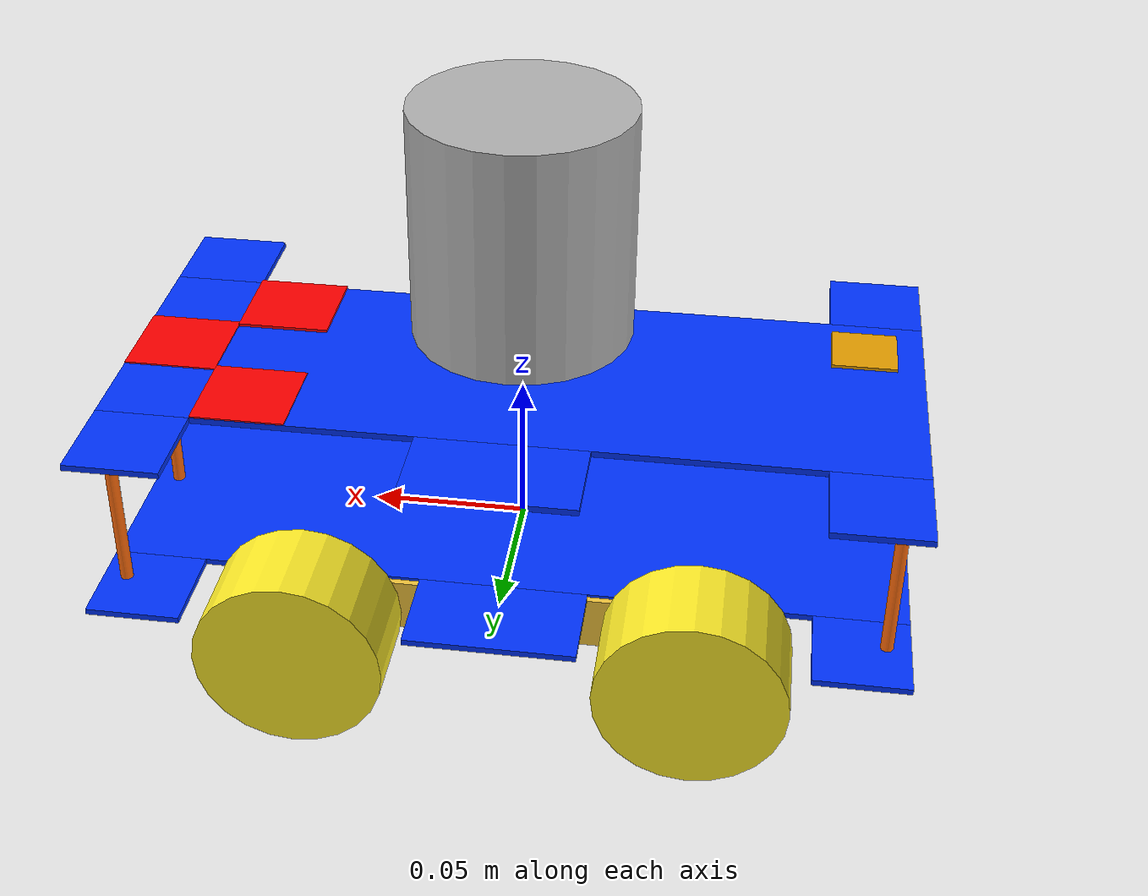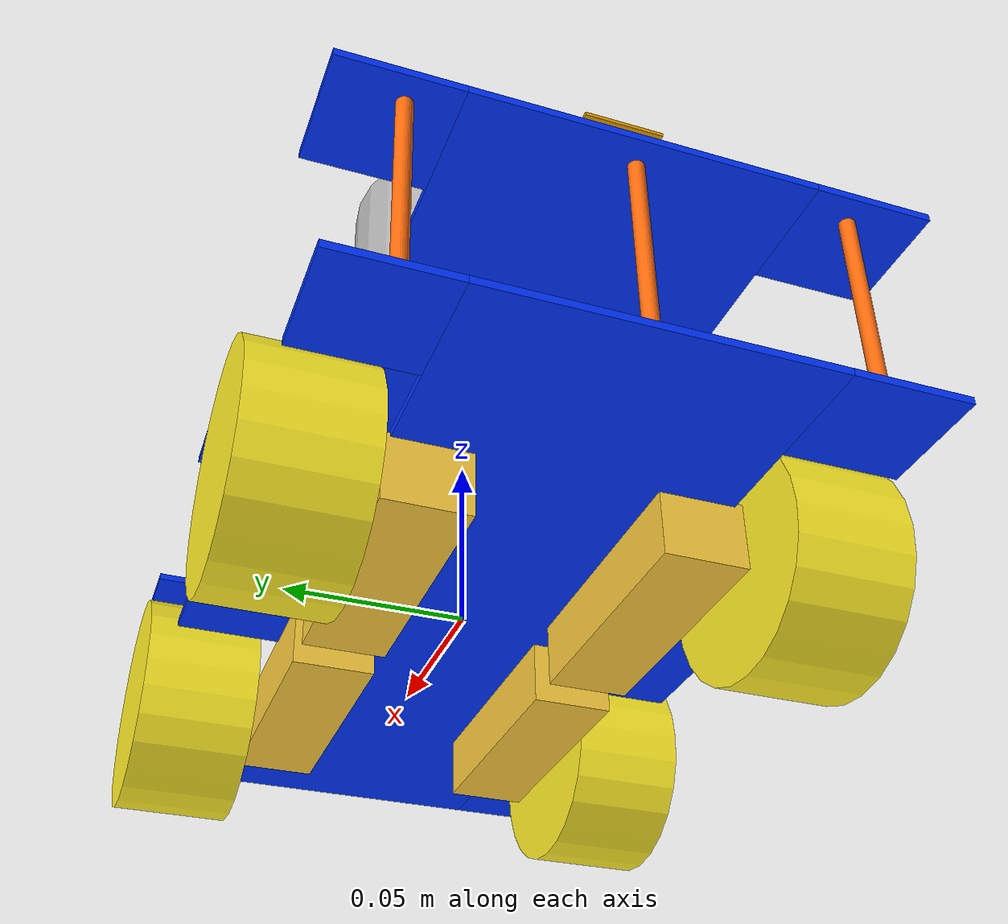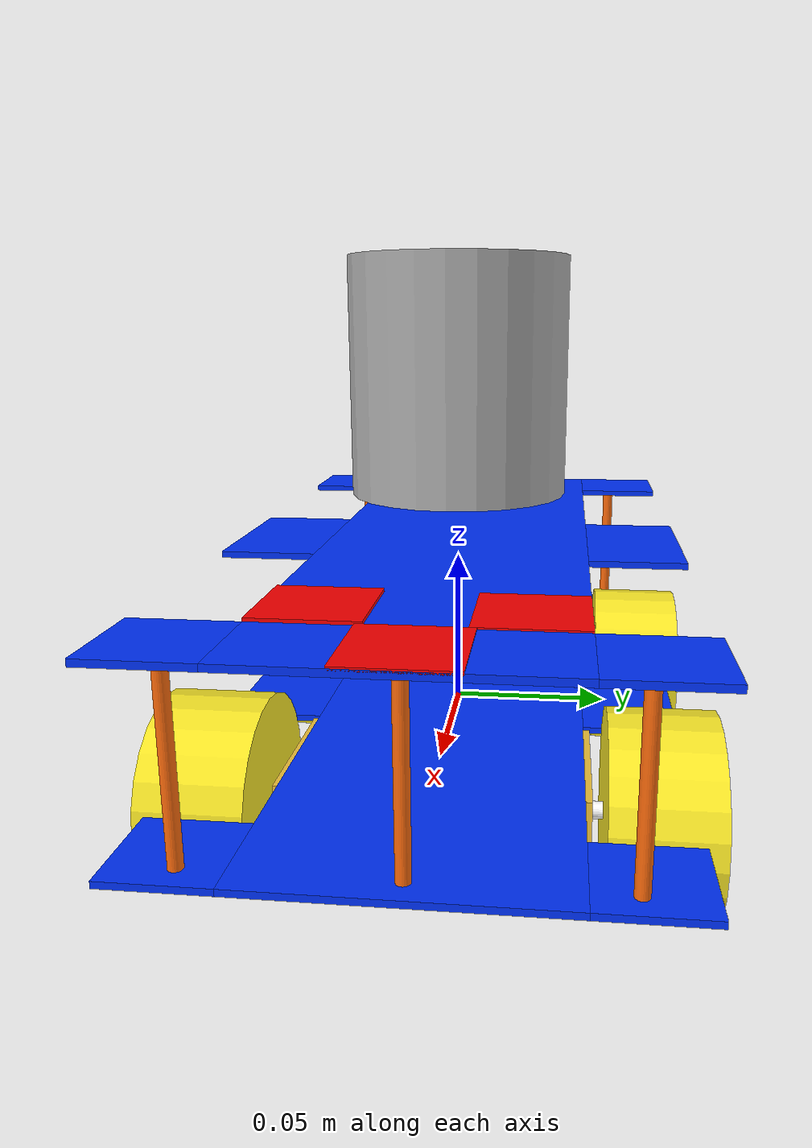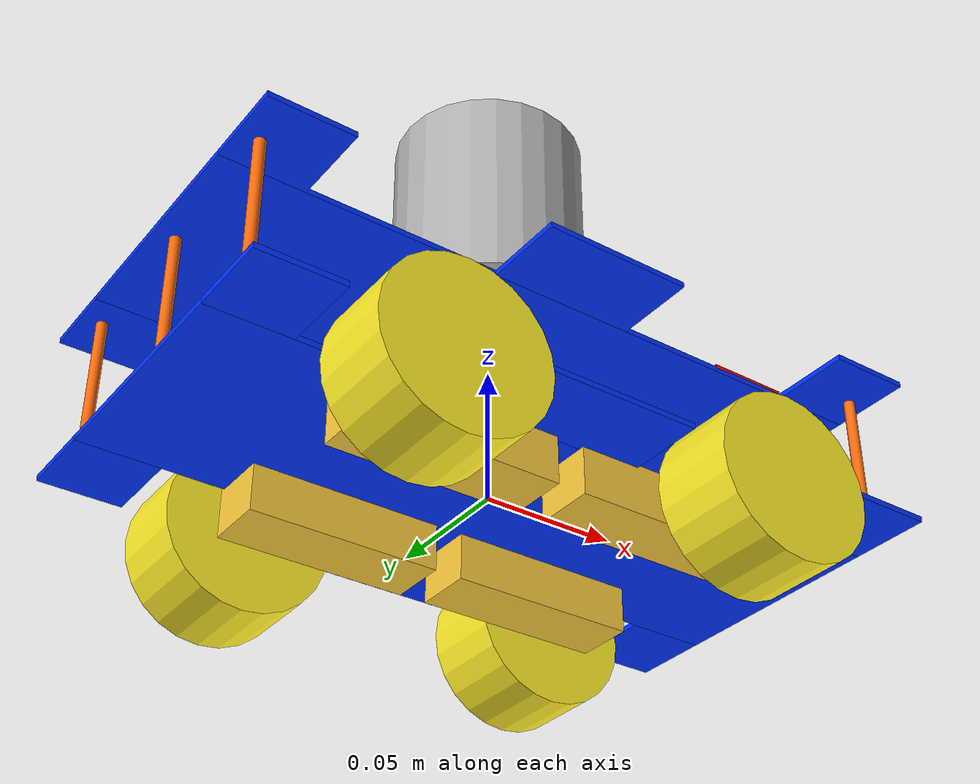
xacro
<?xml version="1.0"?>

<robot xmlns:xacro="http://www.ros.org/wiki/xacro">

    <xacro:arg name="use_simulation" default="false"/>

    <xacro:include filename="$(find mecabot_description)/urdf/include/common_macros.xacro"/>
    <xacro:include filename="$(find mecabot_description)/urdf/include/materials.xacro"/>

    <xacro:include filename="$(find mecabot_description)/urdf/chassis/layer.xacro"/>
    <xacro:include filename="$(find mecabot_description)/urdf/wheels/wheel.xacro"/>
    <xacro:include filename="$(find mecabot_description)/urdf/wheels/mecanum_wheel.xacro"/>

    <xacro:include filename="$(find mecabot_description)/urdf/sensors/imu.xacro"/>
    <xacro:include filename="$(find mecabot_description)/urdf/sensors/lidar.xacro"/>

    <!--~~~~~~~~~~ BASE LINK ~~~~~~~~~~-->
    <link name="base_link">
    </link>

    <!--~~~~~~~~~~ CHASSIS LAYERS ~~~~~~~~~~-->
    <xacro:layer name="lower_layer" parent="base" mass="${layer_mass}"
                length="${layer_l}" width="${layer_w-wheel_thickness*2}" height="${layer_h}" reflect="0"/>

    <xacro:layer name="upper_layer" parent="base" mass="${layer_mass}"
                length="${layer_l}" width="${layer_w-wheel_thickness*2}" height="${layer_h}" reflect="1"/>

    <!--~~~~~~~~~~ MECANUM WHEEL LINKS ~~~~~~~~~~-->
    <xacro:wheel name="front_left" parent="base" mass="${wheel_mass}"
                radius="${wheel_radius}" thickness="${wheel_thickness}" side_FB="1" side_LR="1"/>
    <xacro:wheel name="front_right" parent="base" mass="${wheel_mass}"
                radius="${wheel_radius}" thickness="${wheel_thickness}" side_FB="1" side_LR="-1"/>
    <xacro:wheel name="back_left" parent="base" mass="${wheel_mass}"
                radius="${wheel_radius}" thickness="${wheel_thickness}" side_FB="-1" side_LR="1"/>
    <xacro:wheel name="back_right" parent="base" mass="${wheel_mass}"
                radius="${wheel_radius}" thickness="${wheel_thickness}" side_FB="-1" side_LR="-1"/>

    <!--~~~~~~~~~~ LIDAR ~~~~~~~~~~-->
    <xacro:lidar parent="base"/>
    <!--~~~~~~~~~~ IMU ~~~~~~~~~~-->
    <xacro:imu parent="base"/>

    <!--~~~~~~~~~~ Extra simulation components (if use Gazebo). Change condition to False when run on real robot  ~~~~~~~~~~-->
    <xacro:if value="$(arg use_simulation)">
        <!-- Publish joints' state -->
        <gazebo>
            <plugin name="joint_state_publisher" filename="libgazebo_ros_joint_state_publisher.so">
                <jointName>front_left_wheel_joint, front_right_wheel_joint, back_left_wheel_joint, back_right_wheel_joint</jointName>
            </plugin>
        </gazebo>

        <!-- Lidar simulation using Gazebo. -->
        <gazebo reference="lidar_frame">
            <material>Gazebo/Black</material>
            <sensor name="laser" type="ray">
                <pose> 0 0 0 0 0 0 </pose>
                <visualize>true</visualize>
                <update_rate>30</update_rate>
                <ray>
                    <scan>
                        <horizontal>
                            <samples>359</samples>
                            <resolution>1</resolution>
                            <min_angle>-3.14</min_angle>
                            <max_angle>3.14</max_angle>
                        </horizontal>
                    </scan>
                    <range>
                        <min>0.2</min>
                        <max>12</max>
                        <resolution>0.01</resolution>
                    </range>
                    <noise>
                        <type>gaussian</type>
                        <mean>0.0</mean>
                        <stddev>0.02</stddev>
                    </noise>
                </ray>
                <plugin name="laser_controller" filename="libgazebo_ros_laser.so">
                    <robotNamespace>/</robotNamespace>
                    <topicName>/scan</topicName>
                    <frameName>lidar_frame</frameName>
                </plugin>
            </sensor>
        </gazebo>

        <!-- IMU simulation using Gazebo. -->
        <gazebo reference="imu_frame">
            <gravity>true</gravity>
            <sensor name="imu_sensor" type="imu">
                <always_on>true</always_on>
                <update_rate>100</update_rate>
                <visualize>true</visualize>
                <topic>__default_topic__</topic>
                <plugin name="imu_plugin" filename="libgazebo_ros_imu_sensor.so">
                    <robotNamespace>/</robotNamespace>
                    <topicName>/imu</topicName>
                    <bodyName>imu_frame</bodyName>
                    <updateRateHZ>10.0</updateRateHZ>
                    <gaussianNoise>0.0</gaussianNoise>
                    <xyzOffset>0 0 0</xyzOffset>
                    <rpyOffset>0 0 0</rpyOffset>
                    <frameName>imu_frame</frameName>
                    <initialOrientationAsReference>false</initialOrientationAsReference>
                </plugin>
                <pose>0 0 0 0 0 0</pose>
            </sensor>
        </gazebo>
    </xacro:if>

</robot>

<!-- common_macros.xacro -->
<robot xmlns:xacro="http://www.ros.org/wiki/xacro">

    <xacro:property name="PI" value="3.1415926535897931" />

    <!--~~~~~~~~~~ Basic shapes' inertia ~~~~~~~~~~-->
    <xacro:macro name="inertial_cylinder" params="mass radius length *origin">
        <inertial>
            <xacro:insert_block name="origin"/>
            <mass value="${mass}" />
            <inertia ixx="${(1/12) * mass * (3*radius*radius + length*length)}" ixy="0.0" ixz="0.0"
                    iyy="${(1/12) * mass * (3*radius*radius + length*length)}" iyz="0.0"
                    izz="${(1/2) * mass * (radius*radius)}" />
        </inertial>
    </xacro:macro>

    <xacro:macro name="inertial_box" params="mass x y z *origin">
        <inertial>
            <xacro:insert_block name="origin"/>
            <mass value="${mass}" />
            <inertia ixx="${(1/12) * mass * (y*y+z*z)}" ixy="0.0" ixz="0.0"
                    iyy="${(1/12) * mass * (x*x+z*z)}" iyz="0.0"
                    izz="${(1/12) * mass * (x*x+y*y)}" />
        </inertial>
    </xacro:macro>

    <!--~~~~~~~~~~ Layer and chassis properties ~~~~~~~~~~-->
    <xacro:property name="layer_l" value="0.255"/>
    <xacro:property name="layer_w" value="0.148"/>
    <xacro:property name="layer_h" value="0.002"/>
    <xacro:property name="layer_mass" value="1.0"/>

    <xacro:property name="side_piece_size" value="0.03"/>

    <xacro:property name="motor_l" value="0.07"/>
    <xacro:property name="motor_w" value="0.022"/>
    <xacro:property name="motor_h" value="0.018"/>

    <xacro:property name="motor_offset_fb" value="0.04"/>
    <xacro:property name="motor_offset_lr" value="0.034"/>

    <xacro:property name="shaft_radius" value="0.0025"/>
    <xacro:property name="shaft_length" value="0.03"/>
    <xacro:property name="shaft_offset_fb" value="0.06215"/>

    <xacro:property name="chassis_l" value="${layer_l}"/>
    <xacro:property name="chassis_w" value="${layer_w}"/>
    <xacro:property name="chassis_h" value="0.07"/>

    <!--~~~~~~~~~~ Wheel properties ~~~~~~~~~~-->
    <xacro:property name="wheel_radius" value="0.03" />
    <xacro:property name="wheel_thickness" value="0.031" />
    <xacro:property name="wheel_mass" value="0.5" /> <!-- in kg-->

    <xacro:property name="wheel_offset_z" value="0.009" />
    <xacro:property name="wheel_offset_fb" value="0.06215"/>
    <xacro:property name="wheel_offset_lr" value="0.064"/>

    <!--~~~~~~~~~~ Copper pillar properties ~~~~~~~~~~-->
    <xacro:property name="pillar_radius" value="0.002"/>
    <xacro:property name="pillar_length" value="0.055"/>
    <xacro:property name="pillar_offset_fb" value="0.12"/>
    <xacro:property name="pillar_offset_lr" value="0.055"/>

    <!--~~~~~~~~~~ LiDAR properties ~~~~~~~~~~-->
    <xacro:property name="lidar_radius" value="0.035"/>
    <xacro:property name="lidar_height" value="0.075"/>
    <xacro:property name="lidar_mass" value="0.29"/>

</robot>

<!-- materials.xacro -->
<robot xmlns:xacro="http://www.ros.org/wiki/xacro">

  <material name="black">
    <color rgba="0.0 0.0 0.0 1.0"/>
  </material>

  <material name="red">
    <color rgba="0.8 0.0 0.0 1.0"/>
  </material>

  <material name="green">
    <color rgba="0.0 0.8 0.0 1.0"/>
  </material>

 <material name="blue">
    <color rgba="0.0 0.0 0.8 1.0"/>
  </material>

  <material name="yellow">
    <color rgba="${247/255} ${237/255} ${49/255} 1.0"/>
  </material>

  <material name="orange">
    <color rgba="${255/255} ${108/255} ${10/255} 1.0"/>
  </material>

  <material name="brown">
    <color rgba="${222/255} ${207/255} ${195/255} 1.0"/>
  </material>

  <material name="grey">
    <color rgba="0.2 0.2 0.2 1.0"/>
  </material>

  <material name="white">
    <color rgba="1.0 1.0 1.0 1.0"/>
  </material>

  <xacro:property name="base_material">
    <material name="blue">
        <color rgba="0.0 0.2 1.0 1.0"/>
    </material>
  </xacro:property>

  <xacro:property name="motor_material">
    <material name="motor_yellow">
        <color rgba="${247/255} ${200/255} ${60/255} 1.0"/>
    </material>
  </xacro:property>

</robot>

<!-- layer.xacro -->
<robot xmlns:xacro="http://www.ros.org/wiki/xacro">

    <xacro:macro name="motor_visual" params="name side_FB side_LR">
        <visual name="${name}">
            <origin xyz="${motor_offset_fb*side_FB} ${motor_offset_lr*side_LR} -${motor_h/2}" rpy="0.0 0.0 0.0"/>
            <geometry>
                <box size="${motor_l} ${motor_w} ${motor_h}"/>
            </geometry>
            <xacro:insert_block name="motor_material"/>
        </visual>
        <visual name="${name}_shaft">
            <origin xyz="${shaft_offset_fb*side_FB} ${(motor_offset_lr + shaft_length/3)*side_LR} -${motor_h/2}" rpy="-${PI/2} 0.0 0.0"/>
            <geometry>
                <cylinder radius="${shaft_radius}" length="${shaft_length}"/>
            </geometry>
            <material name="white">
                <color rgba="1.0 1.0 1.0 1.0"/>
            </material>
        </visual>
    </xacro:macro>

    <xacro:macro name="direction_pieces_visual">

        <visual name="direction_piece_1">
            <origin xyz="${length/2-side_piece_size/2} 0.0 ${height/2}" rpy="0.0 0.0 0.0"/>
            <geometry>
                <box size="${side_piece_size} ${side_piece_size} ${height/2}"/>
            </geometry>
            <material name="header">
                <color rgba="1.0 0.0 0.0 1.0"/>
            </material>
        </visual>

        <visual name="direction_piece_2">
            <origin xyz="${length/2-1.5*side_piece_size} ${width/2-side_piece_size/2} ${height/2}" rpy="0.0 0.0 0.0"/>
            <geometry>
                <box size="${side_piece_size} ${side_piece_size} ${height/2}"/>
            </geometry>
            <material name="header">
                <color rgba="1.0 0.0 0.0 1.0"/>
            </material>
        </visual>

        <visual name="direction_piece_3">
            <origin xyz="${length/2-1.5*side_piece_size} -${width/2-side_piece_size/2} ${height/2}" rpy="0.0 0.0 0.0"/>
            <geometry>
                <box size="${side_piece_size} ${side_piece_size} ${height}"/>
            </geometry>
            <material name="header">
                <color rgba="1.0 0.0 0.0 1.0"/>
            </material>
        </visual>

    </xacro:macro>

    <xacro:macro name="pillar_visual" params="side_FB side_LR">
        <visual>
            <origin xyz="${pillar_offset_fb*side_FB} ${pillar_offset_lr*side_LR} ${-pillar_length/2}" rpy="0.0 0.0 0.0"/>
            <geometry>
                <cylinder radius="${pillar_radius}" length="${pillar_length}"/>
            </geometry>
            <material name="pillar_color">
                <color rgba="${255/255} ${108/255} ${12/255} 1.0"/>
            </material>
        </visual>
    </xacro:macro>

    <xacro:macro name="layer" params="name parent mass length width height reflect">

        <xacro:property name="layer_joint_origin">
            <origin xyz="0 0 ${reflect*0.055}" rpy="0 0 0"/>
        </xacro:property>

        <link name="${name}_link">

            <visual>
                <origin xyz="0 0 0" rpy="0 0 0"/>
                <geometry>
                    <box size="${length} ${width} ${height}"/>
                </geometry>
                <xacro:insert_block name="base_material"/>
            </visual>

            <xacro:if value="${name == 'upper_layer'}">
                <xacro:direction_pieces_visual/>
                <xacro:pillar_visual side_FB="1" side_LR="0"/>
                <xacro:pillar_visual side_FB="1" side_LR="1"/>
                <xacro:pillar_visual side_FB="1" side_LR="-1"/>
                <xacro:pillar_visual side_FB="-1" side_LR="0"/>
                <xacro:pillar_visual side_FB="-1" side_LR="1"/>
                <xacro:pillar_visual side_FB="-1" side_LR="-1"/>
            </xacro:if>

            <xacro:if value="${name == 'lower_layer'}">
                <xacro:motor_visual name="FL_motor" side_FB="1" side_LR="1"/>
                <xacro:motor_visual name="FR_motor" side_FB="1" side_LR="-1"/>
                <xacro:motor_visual name="BL_motor" side_FB="-1" side_LR="1"/>
                <xacro:motor_visual name="BR_motor" side_FB="-1" side_LR="-1"/>
            </xacro:if>

            <!-- Front left piece -->
            <visual>
                <origin xyz="${length/2-side_piece_size/2} ${width/2+side_piece_size/2} 0" rpy="0.0 0.0 0.0"/>
                <geometry>
                    <box size="${side_piece_size} ${side_piece_size} ${height}"/>
                </geometry>
                <xacro:insert_block name="base_material"/>
            </visual>
            <!-- Front right piece -->
            <visual>
                <origin xyz="${length/2-side_piece_size/2} -${width/2+side_piece_size/2} 0" rpy="0.0 0.0 0.0"/>
                <geometry>
                    <box size="${side_piece_size} ${side_piece_size} ${height}"/>
                </geometry>
                <xacro:insert_block name="base_material"/>
            </visual>
            <!-- Middle left piece -->
            <visual>
                <origin xyz="0.0 ${width/2+side_piece_size/2} 0" rpy="0.0 0.0 0.0"/>
                <geometry>
                    <box size="${side_piece_size*1.8} ${side_piece_size} ${height}"/>
                </geometry>
                <xacro:insert_block name="base_material"/>
            </visual>
            <!-- Middle right piece -->
            <visual>
                <origin xyz="0.0 -${width/2+side_piece_size/2} 0" rpy="0.0 0.0 0.0"/>
                <geometry>
                    <box size="${side_piece_size*1.8} ${side_piece_size} ${height}"/>
                </geometry>
                <xacro:insert_block name="base_material"/>
            </visual>
            <!-- Back left piece -->
            <visual>
                <origin xyz="-${length/2-side_piece_size/2} ${width/2+side_piece_size/2} 0" rpy="0.0 0.0 0.0"/>
                <geometry>
                    <box size="${side_piece_size} ${side_piece_size} ${height}"/>
                </geometry>
                <xacro:insert_block name="base_material"/>
            </visual>
            <!-- Back right piece -->
            <visual>
                <origin xyz="-${length/2-side_piece_size/2} -${width/2+side_piece_size/2} 0" rpy="0.0 0.0 0.0"/>
                <geometry>
                    <box size="${side_piece_size} ${side_piece_size} ${height}"/>
                </geometry>
                <xacro:insert_block name="base_material"/>
            </visual>

            <collision>
                <origin xyz="0 0 0" rpy="0 0 0"/>
                <geometry>
                    <box size="${length} ${width + 2*side_piece_size} ${height}"/>
                </geometry>
            </collision>

            <xacro:inertial_box mass="${mass}" x="${length}" y="${width}" z="${height}">
                <origin xyz="0.0 0.0 0.0" rpy="0.0 0.0 0.0"/>
            </xacro:inertial_box>

        </link>

        <joint name="${parent}_to_${name}_joint" type="fixed">

            <parent link="${parent}_link"/>

            <child link="${name}_link"/>

            <xacro:insert_block name="layer_joint_origin"/>

        </joint>

        <gazebo reference="${name}_link">
            <material>Gazebo/Blue</material>
        </gazebo>

    </xacro:macro>

</robot>

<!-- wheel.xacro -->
<robot xmlns:xacro="http://www.ros.org/wiki/xacro">

    <xacro:macro name="wheel" params="name parent mass radius thickness side_FB side_LR">

        <link name="${name}_wheel_link">

            <visual>
                <origin xyz="0.0 0.0 0.0" rpy="0.0 0.0 0.0"/>
                <geometry>
                    <cylinder radius="${radius}" length="${thickness}"/>
                </geometry>
                <material name="yellow">
                    <color rgba="${255/255} ${237/255} ${40/255} 1.0"/>
                </material>
            </visual>

            <collision>
                <origin xyz="0 0 0" rpy="0 0 0" />
                <geometry>
                    <cylinder radius="${radius}" length="${thickness}"/>
                </geometry>
            </collision>

            <xacro:inertial_cylinder  mass="${mass}" radius="${radius}" length="${thickness}">
                <origin xyz="0 0 0" rpy="0 0 0"/>
            </xacro:inertial_cylinder>

        </link>

        <gazebo reference="${name}_wheel_link">
			<mu1 value="0.5"/>
			<mu2 value="0.5"/>
			<kp value="10000000.0" />
			<kd value="1.0" />
			<fdir1 value="1 0 0"/>
		</gazebo>

        <joint name="${name}_wheel_joint" type="continuous">

            <parent link="${parent}_link"/>

            <child link="${name}_wheel_link"/>

            <origin xyz="${wheel_offset_fb*side_FB} ${wheel_offset_lr*side_LR} -${wheel_offset_z}" rpy="${-side_LR*PI/2} 0.0 0.0"/>

            <axis xyz="0 0 ${side_LR}" rpy="0 0 0" />

        </joint>

        <gazebo reference="${name}_wheel_link">
            <material>Gazebo/Yellow</material>
        </gazebo>

    </xacro:macro>

</robot>

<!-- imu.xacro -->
<robot xmlns:xacro="http://www.ros.org/wiki/xacro">

    <xacro:macro name="imu" params="parent">

        <joint name="imu_joint" type="fixed">
            <origin xyz="-0.1065 0.0 0.072" rpy="0.0 0.0 0.0"/>
            <parent link="${parent}_link"/>
            <child link="imu_frame"/>
        </joint>

        <link name="imu_frame">

            <visual>
                <origin xyz="0.0 0.0 0.0" rpy="0.0 0.0 0.0"/>
                <geometry>
                    <box size="0.02 0.02 ${layer_h/2}"/>
                </geometry>
            </visual>

            <collision>
                <origin xyz="0.0 0.0 0.0" rpy="0.0 0.0 0.0"/>
                <geometry>
                    <box size="0.02 0.02 ${layer_h/2}"/>
                </geometry>
            </collision>

        </link>

    </xacro:macro>

</robot>

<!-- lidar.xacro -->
<robot xmlns:xacro="http://www.ros.org/wiki/xacro">

    <xacro:macro name="lidar" params="parent">

        <xacro:property name="lidar_joint_origin">
            <origin xyz="0 0 ${lidar_height/2 + 0.072}" rpy="0.0 0.0 0.0"/>
        </xacro:property>

        <joint name="lidar_joint" type="fixed">
            <xacro:insert_block name="lidar_joint_origin"/>
            <parent link="${parent}_link"/>
            <child link="lidar_frame"/>
        </joint>

        <link name="lidar_frame">
            <visual>
                <origin xyz="0 0 0" rpy="0 0 0" />
                <geometry>
                    <cylinder radius="${lidar_radius}" length="${lidar_height}"/>
                </geometry>
            </visual>
            <collision>
                <origin xyz="0 0 0" rpy="0 0 0" />
                <geometry>
                    <cylinder radius="${lidar_radius}" length="${lidar_height}"/>
                </geometry>
            </collision>
            <xacro:inertial_cylinder  mass="${lidar_mass}" radius="${lidar_radius}" length="${lidar_height}">
                <origin xyz="0 0 0" rpy="0 0 0"/>
            </xacro:inertial_cylinder>
        </link>

    </xacro:macro>

</robot>
